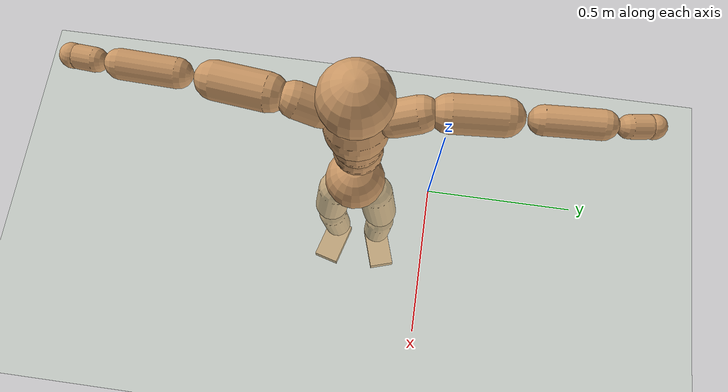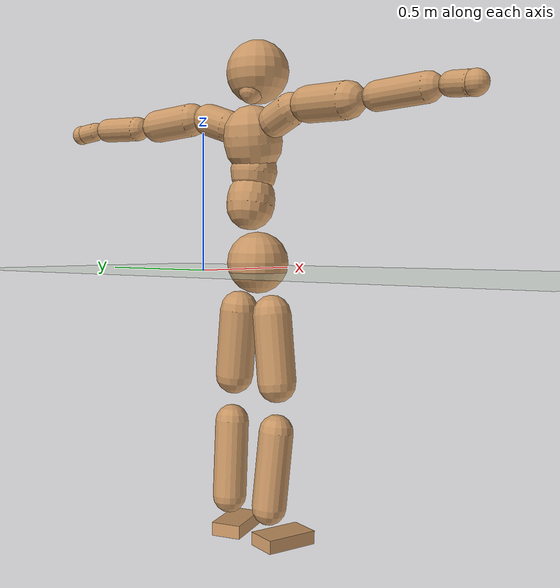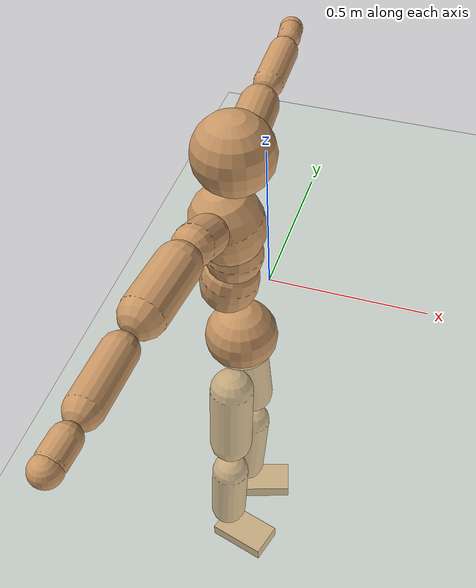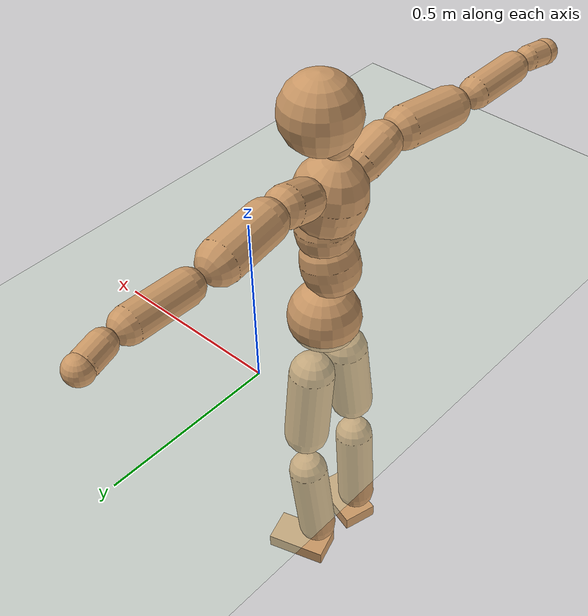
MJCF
<mujoco model="humanoid">
  <compiler coordinate="local"/>
  <default>
    <joint damping="0.0" armature="0.01" stiffness="0.0" limited="true"/>
    <geom conaffinity="1" condim="3" contype="7" margin="0.001" rgba="0.8 0.6 .4 1"/>
  </default>
  <asset>
    <texture type="skybox" builtin="gradient" rgb1=".4 .5 .6" rgb2="0 0 0" width="100" height="100"/>
    <texture builtin="flat" height="1278" mark="cross" markrgb="1 1 1" name="texgeom" random="0.01" rgb1="0.8 0.6 0.4" rgb2="0.8 0.6 0.4" type="cube" width="127"/>
    <texture builtin="checker" height="100" name="texplane" rgb1="0 0 0" rgb2="0.8 0.8 0.8" type="2d" width="100"/>
    <material name="MatPlane" reflectance="0.5" shininess="1" specular="1" texrepeat="60 60" texture="texplane"/>
    <material name="geom" texture="texgeom" texuniform="true"/>
  </asset>
  <worldbody>
    <light cutoff="100" diffuse="1 1 1" dir="-0 0 -1.3" directional="true" exponent="1" pos="0 0 1.3" specular=".1 .1 .1"/>
    <geom conaffinity="1" condim="3" name="floor" pos="0 0 0" rgba="0.8 0.9 0.8 1" size="100 100 .2" type="plane" material="MatPlane"/>
    <body name="Pelvis" pos="-0.0012 -0.262 0.0321">
      <freejoint name="Pelvis"/>
      <geom type="sphere" contype="1" conaffinity="1" density="500" size="0.1065" pos="0.0000 0.0000 0.0000" name="Pelvis"/>
      <body name="L_Hip" pos="-0.0163 0.0644 -0.0882">
        <joint name="L_Hip_x" type="hinge" pos="0 0 0" axis="1 0 0" stiffness="800" damping="80" armature="0.02" range="-180.0000 180.0000"/>
        <joint name="L_Hip_y" type="hinge" pos="0 0 0" axis="0 1 0" stiffness="800" damping="80" armature="0.02" range="-180.0000 180.0000"/>
        <joint name="L_Hip_z" type="hinge" pos="0 0 0" axis="0 0 1" stiffness="800" damping="80" armature="0.02" range="-180.0000 180.0000"/>
        <geom type="capsule" contype="1" conaffinity="1" density="500" fromto="0.0012 0.0084 -0.0781 0.0047 0.0336 -0.3126" size="0.0666" name="L_Hip"/>
        <body name="L_Knee" pos="0.0059 0.0419 -0.3907">
          <joint name="L_Knee_x" type="hinge" pos="0 0 0" axis="1 0 0" stiffness="800" damping="80" armature="0.02" range="-180.0000 180.0000"/>
          <joint name="L_Knee_y" type="hinge" pos="0 0 0" axis="0 1 0" stiffness="800" damping="80" armature="0.02" range="-180.0000 180.0000"/>
          <joint name="L_Knee_z" type="hinge" pos="0 0 0" axis="0 0 1" stiffness="800" damping="80" armature="0.02" range="-180.0000 180.0000"/>
          <geom type="capsule" contype="1" conaffinity="1" density="500" fromto="-0.0083 -0.0033 -0.0877 -0.0332 -0.0133 -0.3509" size="0.0591" name="L_Knee"/>
          <body name="L_Ankle" pos="-0.0415 -0.0166 -0.4386">
            <joint name="L_Ankle_x" type="hinge" pos="0 0 0" axis="1 0 0" stiffness="800" damping="80" armature="0.02" range="-180.0000 180.0000"/>
            <joint name="L_Ankle_y" type="hinge" pos="0 0 0" axis="0 1 0" stiffness="800" damping="80" armature="0.02" range="-180.0000 180.0000"/>
            <joint name="L_Ankle_z" type="hinge" pos="0 0 0" axis="0 0 1" stiffness="800" damping="80" armature="0.02" range="-180.0000 180.0000"/>
            <geom type="box" contype="1" conaffinity="1" density="500" pos="0.0633 0.0198 -0.0310" size="0.0927 0.0529 0.0234" quat="0.9886 0.0000 0.0000 0.1508" name="L_Ankle"/>
            <body name="L_Toe" pos="0.1266 0.0395 -0.0621">
              <joint name="L_Toe_x" type="hinge" pos="0 0 0" axis="1 0 0" stiffness="500" damping="50" armature="0.02" range="-180.0000 180.0000"/>
              <joint name="L_Toe_y" type="hinge" pos="0 0 0" axis="0 1 0" stiffness="500" damping="50" armature="0.02" range="-180.0000 180.0000"/>
              <joint name="L_Toe_z" type="hinge" pos="0 0 0" axis="0 0 1" stiffness="500" damping="50" armature="0.02" range="-180.0000 180.0000"/>
              <geom type="box" contype="1" conaffinity="1" density="500" pos="0.0000 0.0000 0.0302" size="0.0011 0.0026 0.0011" quat="0.9878 0.0000 0.0000 0.1556" name="L_Toe"/>
            </body>
          </body>
        </body>
      </body>
      <body name="R_Hip" pos="-0.0117 -0.0663 -0.0968">
        <joint name="R_Hip_x" type="hinge" pos="0 0 0" axis="1 0 0" stiffness="800" damping="80" armature="0.02" range="-180.0000 180.0000"/>
        <joint name="R_Hip_y" type="hinge" pos="0 0 0" axis="0 1 0" stiffness="800" damping="80" armature="0.02" range="-180.0000 180.0000"/>
        <joint name="R_Hip_z" type="hinge" pos="0 0 0" axis="0 0 1" stiffness="800" damping="80" armature="0.02" range="-180.0000 180.0000"/>
        <geom type="capsule" contype="1" conaffinity="1" density="500" fromto="-0.0014 -0.0087 -0.0782 -0.0057 -0.0348 -0.3127" size="0.0662" name="R_Hip"/>
        <body name="R_Knee" pos="-0.0071 -0.0435 -0.3909">
          <joint name="R_Knee_x" type="hinge" pos="0 0 0" axis="1 0 0" stiffness="800" damping="80" armature="0.02" range="-180.0000 180.0000"/>
          <joint name="R_Knee_y" type="hinge" pos="0 0 0" axis="0 1 0" stiffness="800" damping="80" armature="0.02" range="-180.0000 180.0000"/>
          <joint name="R_Knee_z" type="hinge" pos="0 0 0" axis="0 0 1" stiffness="800" damping="80" armature="0.02" range="-180.0000 180.0000"/>
          <geom type="capsule" contype="1" conaffinity="1" density="500" fromto="-0.0077 0.0041 -0.0865 -0.0307 0.0164 -0.3460" size="0.0589" name="R_Knee"/>
          <body name="R_Ankle" pos="-0.0384 0.0205 -0.4324">
            <joint name="R_Ankle_x" type="hinge" pos="0 0 0" axis="1 0 0" stiffness="800" damping="80" armature="0.02" range="-180.0000 180.0000"/>
            <joint name="R_Ankle_y" type="hinge" pos="0 0 0" axis="0 1 0" stiffness="800" damping="80" armature="0.02" range="-180.0000 180.0000"/>
            <joint name="R_Ankle_z" type="hinge" pos="0 0 0" axis="0 0 1" stiffness="800" damping="80" armature="0.02" range="-180.0000 180.0000"/>
            <geom type="box" contype="1" conaffinity="1" density="500" pos="0.0677 -0.0190 -0.0316" size="0.0941 0.0546 0.0228" quat="0.9907 0.0000 0.0000 -0.1362" name="R_Ankle"/>
            <body name="R_Toe" pos="0.1354 -0.0379 -0.0633">
              <joint name="R_Toe_x" type="hinge" pos="0 0 0" axis="1 0 0" stiffness="500" damping="50" armature="0.02" range="-180.0000 180.0000"/>
              <joint name="R_Toe_y" type="hinge" pos="0 0 0" axis="0 1 0" stiffness="500" damping="50" armature="0.02" range="-180.0000 180.0000"/>
              <joint name="R_Toe_z" type="hinge" pos="0 0 0" axis="0 0 1" stiffness="500" damping="50" armature="0.02" range="-180.0000 180.0000"/>
              <geom type="box" contype="1" conaffinity="1" density="500" pos="0.0000 0.0000 0.0326" size="0.0011 0.0027 0.0012" quat="0.9918 0.0000 0.0000 -0.1276" name="R_Toe"/>
            </body>
          </body>
        </body>
      </body>
      <body name="Torso" pos="-0.0437 0.0046 0.1352">
        <joint name="Torso_x" type="hinge" pos="0 0 0" axis="1 0 0" stiffness="1000" damping="100" armature="0.02" range="-180.0000 180.0000"/>
        <joint name="Torso_y" type="hinge" pos="0 0 0" axis="0 1 0" stiffness="1000" damping="100" armature="0.02" range="-180.0000 180.0000"/>
        <joint name="Torso_z" type="hinge" pos="0 0 0" axis="0 0 1" stiffness="1000" damping="100" armature="0.02" range="-180.0000 180.0000"/>
        <geom type="capsule" contype="1" conaffinity="1" density="500" fromto="0.0180 0.0030 0.0894 0.0120 0.0020 0.0596" size="0.082491" name="Torso"/>
        <body name="Spine" pos="0.0299 0.005 0.149">
          <joint name="Spine_x" type="hinge" pos="0 0 0" axis="1 0 0" stiffness="1000" damping="100" armature="0.02" range="-180.0000 180.0000"/>
          <joint name="Spine_y" type="hinge" pos="0 0 0" axis="0 1 0" stiffness="1000" damping="100" armature="0.02" range="-180.0000 180.0000"/>
          <joint name="Spine_z" type="hinge" pos="0 0 0" axis="0 0 1" stiffness="1000" damping="100" armature="0.02" range="-180.0000 180.0000"/>
          <geom type="capsule" contype="1" conaffinity="1" density="500" fromto="0.0030 -0.0018 0.0363 0.0020 -0.0012 0.0242" size="0.080445" name="Spine"/>
          <body name="Chest" pos="0.005 -0.003 0.0605">
            <joint name="Chest_x" type="hinge" pos="0 0 0" axis="1 0 0" stiffness="1000" damping="100" armature="0.02" range="-180.0000 180.0000"/>
            <joint name="Chest_y" type="hinge" pos="0 0 0" axis="0 1 0" stiffness="1000" damping="100" armature="0.02" range="-180.0000 180.0000"/>
            <joint name="Chest_z" type="hinge" pos="0 0 0" axis="0 0 1" stiffness="1000" damping="100" armature="0.02" range="-180.0000 180.0000"/>
            <geom type="capsule" contype="1" conaffinity="1" density="500" fromto="-0.0169 -0.0047 0.0919 -0.0113 -0.0031 0.0613" size="0.100998" name="Chest"/>
            <body name="Neck" pos="-0.0393 -0.0124 0.2211">
              <joint name="Neck_x" type="hinge" pos="0 0 0" axis="1 0 0" stiffness="500" damping="50" armature="0.02" range="-180.0000 180.0000"/>
              <joint name="Neck_y" type="hinge" pos="0 0 0" axis="0 1 0" stiffness="500" damping="50" armature="0.02" range="-180.0000 180.0000"/>
              <joint name="Neck_z" type="hinge" pos="0 0 0" axis="0 0 1" stiffness="500" damping="50" armature="0.02" range="-180.0000 180.0000"/>
              <geom type="capsule" contype="1" conaffinity="1" density="500" fromto="0.0104 0.0020 0.0174 0.0417 0.0082 0.0695" size="0.043896" name="Neck"/>
              <body name="Head" pos="0.0521 0.0102 0.0869">
                <joint name="Head_x" type="hinge" pos="0 0 0" axis="1 0 0" stiffness="500" damping="50" armature="0.02" range="-180.0000 180.0000"/>
                <joint name="Head_y" type="hinge" pos="0 0 0" axis="0 1 0" stiffness="500" damping="50" armature="0.02" range="-180.0000 180.0000"/>
                <joint name="Head_z" type="hinge" pos="0 0 0" axis="0 0 1" stiffness="500" damping="50" armature="0.02" range="-180.0000 180.0000"/>
                <geom type="sphere" contype="1" conaffinity="1" density="500" size="0.1080" pos="0.0000 0.0000 0.0000" name="Head"/>
              </body>
            </body>
            <body name="L_Thorax" pos="-0.0203 0.0763 0.1203">
              <joint name="L_Thorax_x" type="hinge" pos="0 0 0" axis="1 0 0" stiffness="500" damping="50" armature="0.02" range="-180.0000 180.0000"/>
              <joint name="L_Thorax_y" type="hinge" pos="0 0 0" axis="0 1 0" stiffness="500" damping="50" armature="0.02" range="-180.0000 180.0000"/>
              <joint name="L_Thorax_z" type="hinge" pos="0 0 0" axis="0 0 1" stiffness="500" damping="50" armature="0.02" range="-180.0000 180.0000"/>
              <geom type="capsule" contype="1" conaffinity="1" density="500" fromto="-0.0043 0.0255 0.0095 -0.0173 0.1021 0.0378" size="0.0559" name="L_Thorax"/>
              <body name="L_Shoulder" pos="-0.0216 0.1276 0.0473">
                <joint name="L_Shoulder_x" type="hinge" pos="0 0 0" axis="1 0 0" stiffness="500" damping="50" armature="0.02" range="-720.0000 720.0000"/>
                <joint name="L_Shoulder_y" type="hinge" pos="0 0 0" axis="0 1 0" stiffness="500" damping="50" armature="0.02" range="-720.0000 720.0000"/>
                <joint name="L_Shoulder_z" type="hinge" pos="0 0 0" axis="0 0 1" stiffness="500" damping="50" armature="0.02" range="-720.0000 720.0000"/>
                <geom type="capsule" contype="1" conaffinity="1" density="500" fromto="-0.0050 0.0529 -0.0032 -0.0199 0.2115 -0.0130" size="0.0586" name="L_Shoulder"/>
                <body name="L_Elbow" pos="-0.0248 0.2643 -0.0162">
                  <joint name="L_Elbow_x" type="hinge" pos="0 0 0" axis="1 0 0" stiffness="500" damping="50" armature="0.02" range="-720.0000 720.0000"/>
                  <joint name="L_Elbow_y" type="hinge" pos="0 0 0" axis="0 1 0" stiffness="500" damping="50" armature="0.02" range="-720.0000 720.0000"/>
                  <joint name="L_Elbow_z" type="hinge" pos="0 0 0" axis="0 0 1" stiffness="500" damping="50" armature="0.02" range="-720.0000 720.0000"/>
                  <geom type="capsule" contype="1" conaffinity="1" density="500" fromto="-0.0014 0.0551 0.0029 -0.0056 0.2203 0.0114" size="0.0448" name="L_Elbow"/>
                  <body name="L_Wrist" pos="-0.007 0.2753 0.0143">
                    <joint name="L_Wrist_x" type="hinge" pos="0 0 0" axis="1 0 0" stiffness="300" damping="30" armature="0.02" range="-180.0000 180.0000"/>
                    <joint name="L_Wrist_y" type="hinge" pos="0 0 0" axis="0 1 0" stiffness="300" damping="30" armature="0.02" range="-180.0000 180.0000"/>
                    <joint name="L_Wrist_z" type="hinge" pos="0 0 0" axis="0 0 1" stiffness="300" damping="30" armature="0.02" range="-180.0000 180.0000"/>
                    <geom type="capsule" contype="1" conaffinity="1" density="500" fromto="-0.0032 0.0179 -0.0022 -0.0129 0.0715 -0.0088" size="0.0355" name="L_Wrist"/>
                    <body name="L_Hand" pos="-0.0161 0.0894 -0.011">
                      <joint name="L_Hand_x" type="hinge" pos="0 0 0" axis="1 0 0" stiffness="300" damping="30" armature="0.02" range="-180.0000 180.0000"/>
                      <joint name="L_Hand_y" type="hinge" pos="0 0 0" axis="0 1 0" stiffness="300" damping="30" armature="0.02" range="-180.0000 180.0000"/>
                      <joint name="L_Hand_z" type="hinge" pos="0 0 0" axis="0 0 1" stiffness="300" damping="30" armature="0.02" range="-180.0000 180.0000"/>
                      <geom type="sphere" contype="1" conaffinity="1" density="500" size="0.0368" pos="0.0000 0.0000 0.0000" name="L_Hand"/>
                    </body>
                  </body>
                </body>
              </body>
            </body>
            <body name="R_Thorax" pos="-0.0251 -0.0873 0.1182">
              <joint name="R_Thorax_x" type="hinge" pos="0 0 0" axis="1 0 0" stiffness="500" damping="50" armature="0.02" range="-180.0000 180.0000"/>
              <joint name="R_Thorax_y" type="hinge" pos="0 0 0" axis="0 1 0" stiffness="500" damping="50" armature="0.02" range="-180.0000 180.0000"/>
              <joint name="R_Thorax_z" type="hinge" pos="0 0 0" axis="0 0 1" stiffness="500" damping="50" armature="0.02" range="-180.0000 180.0000"/>
              <geom type="capsule" contype="1" conaffinity="1" density="500" fromto="-0.0020 -0.0238 0.0098 -0.0080 -0.0952 0.0391" size="0.0559" name="R_Thorax"/>
              <body name="R_Shoulder" pos="-0.01 -0.119 0.0489">
                <joint name="R_Shoulder_x" type="hinge" pos="0 0 0" axis="1 0 0" stiffness="500" damping="50" armature="0.02" range="-720.0000 720.0000"/>
                <joint name="R_Shoulder_y" type="hinge" pos="0 0 0" axis="0 1 0" stiffness="500" damping="50" armature="0.02" range="-720.0000 720.0000"/>
                <joint name="R_Shoulder_z" type="hinge" pos="0 0 0" axis="0 0 1" stiffness="500" damping="50" armature="0.02" range="-720.0000 720.0000"/>
                <geom type="capsule" contype="1" conaffinity="1" density="500" fromto="-0.0069 -0.0543 -0.0028 -0.0276 -0.2171 -0.0112" size="0.0594" name="R_Shoulder"/>
                <body name="R_Elbow" pos="-0.0345 -0.2714 -0.014">
                  <joint name="R_Elbow_x" type="hinge" pos="0 0 0" axis="1 0 0" stiffness="500" damping="50" armature="0.02" range="-720.0000 720.0000"/>
                  <joint name="R_Elbow_y" type="hinge" pos="0 0 0" axis="0 1 0" stiffness="500" damping="50" armature="0.02" range="-720.0000 720.0000"/>
                  <joint name="R_Elbow_z" type="hinge" pos="0 0 0" axis="0 0 1" stiffness="500" damping="50" armature="0.02" range="-720.0000 720.0000"/>
                  <geom type="capsule" contype="1" conaffinity="1" density="500" fromto="-0.0014 -0.0559 0.0015 -0.0054 -0.2236 0.0059" size="0.0457" name="R_Elbow"/>
                  <body name="R_Wrist" pos="-0.0068 -0.2795 0.0074">
                    <joint name="R_Wrist_x" type="hinge" pos="0 0 0" axis="1 0 0" stiffness="300" damping="30" armature="0.02" range="-180.0000 180.0000"/>
                    <joint name="R_Wrist_y" type="hinge" pos="0 0 0" axis="0 1 0" stiffness="300" damping="30" armature="0.02" range="-180.0000 180.0000"/>
                    <joint name="R_Wrist_z" type="hinge" pos="0 0 0" axis="0 0 1" stiffness="300" damping="30" armature="0.02" range="-180.0000 180.0000"/>
                    <geom type="capsule" contype="1" conaffinity="1" density="500" fromto="-0.0021 -0.0185 -0.0018 -0.0083 -0.0741 -0.0073" size="0.0365" name="R_Wrist"/>
                    <body name="R_Hand" pos="-0.0104 -0.0926 -0.0091">
                      <joint name="R_Hand_x" type="hinge" pos="0 0 0" axis="1 0 0" stiffness="300" damping="30" armature="0.02" range="-180.0000 180.0000"/>
                      <joint name="R_Hand_y" type="hinge" pos="0 0 0" axis="0 1 0" stiffness="300" damping="30" armature="0.02" range="-180.0000 180.0000"/>
                      <joint name="R_Hand_z" type="hinge" pos="0 0 0" axis="0 0 1" stiffness="300" damping="30" armature="0.02" range="-180.0000 180.0000"/>
                      <geom type="sphere" contype="1" conaffinity="1" density="500" size="0.0377" pos="0.0000 0.0000 0.0000" name="R_Hand"/>
                    </body>
                  </body>
                </body>
              </body>
            </body>
          </body>
        </body>
      </body>
    </body>
  </worldbody>
  <actuator>
    <motor name="L_Hip_x" joint="L_Hip_x" gear="500"/>
    <motor name="L_Hip_y" joint="L_Hip_y" gear="500"/>
    <motor name="L_Hip_z" joint="L_Hip_z" gear="500"/>
    <motor name="L_Knee_x" joint="L_Knee_x" gear="500"/>
    <motor name="L_Knee_y" joint="L_Knee_y" gear="500"/>
    <motor name="L_Knee_z" joint="L_Knee_z" gear="500"/>
    <motor name="L_Ankle_x" joint="L_Ankle_x" gear="500"/>
    <motor name="L_Ankle_y" joint="L_Ankle_y" gear="500"/>
    <motor name="L_Ankle_z" joint="L_Ankle_z" gear="500"/>
    <motor name="L_Toe_x" joint="L_Toe_x" gear="500"/>
    <motor name="L_Toe_y" joint="L_Toe_y" gear="500"/>
    <motor name="L_Toe_z" joint="L_Toe_z" gear="500"/>
    <motor name="R_Hip_x" joint="R_Hip_x" gear="500"/>
    <motor name="R_Hip_y" joint="R_Hip_y" gear="500"/>
    <motor name="R_Hip_z" joint="R_Hip_z" gear="500"/>
    <motor name="R_Knee_x" joint="R_Knee_x" gear="500"/>
    <motor name="R_Knee_y" joint="R_Knee_y" gear="500"/>
    <motor name="R_Knee_z" joint="R_Knee_z" gear="500"/>
    <motor name="R_Ankle_x" joint="R_Ankle_x" gear="500"/>
    <motor name="R_Ankle_y" joint="R_Ankle_y" gear="500"/>
    <motor name="R_Ankle_z" joint="R_Ankle_z" gear="500"/>
    <motor name="R_Toe_x" joint="R_Toe_x" gear="500"/>
    <motor name="R_Toe_y" joint="R_Toe_y" gear="500"/>
    <motor name="R_Toe_z" joint="R_Toe_z" gear="500"/>
    <motor name="Torso_x" joint="Torso_x" gear="500"/>
    <motor name="Torso_y" joint="Torso_y" gear="500"/>
    <motor name="Torso_z" joint="Torso_z" gear="500"/>
    <motor name="Spine_x" joint="Spine_x" gear="500"/>
    <motor name="Spine_y" joint="Spine_y" gear="500"/>
    <motor name="Spine_z" joint="Spine_z" gear="500"/>
    <motor name="Chest_x" joint="Chest_x" gear="500"/>
    <motor name="Chest_y" joint="Chest_y" gear="500"/>
    <motor name="Chest_z" joint="Chest_z" gear="500"/>
    <motor name="Neck_x" joint="Neck_x" gear="500"/>
    <motor name="Neck_y" joint="Neck_y" gear="500"/>
    <motor name="Neck_z" joint="Neck_z" gear="500"/>
    <motor name="Head_x" joint="Head_x" gear="500"/>
    <motor name="Head_y" joint="Head_y" gear="500"/>
    <motor name="Head_z" joint="Head_z" gear="500"/>
    <motor name="L_Thorax_x" joint="L_Thorax_x" gear="500"/>
    <motor name="L_Thorax_y" joint="L_Thorax_y" gear="500"/>
    <motor name="L_Thorax_z" joint="L_Thorax_z" gear="500"/>
    <motor name="L_Shoulder_x" joint="L_Shoulder_x" gear="500"/>
    <motor name="L_Shoulder_y" joint="L_Shoulder_y" gear="500"/>
    <motor name="L_Shoulder_z" joint="L_Shoulder_z" gear="500"/>
    <motor name="L_Elbow_x" joint="L_Elbow_x" gear="500"/>
    <motor name="L_Elbow_y" joint="L_Elbow_y" gear="500"/>
    <motor name="L_Elbow_z" joint="L_Elbow_z" gear="500"/>
    <motor name="L_Wrist_x" joint="L_Wrist_x" gear="500"/>
    <motor name="L_Wrist_y" joint="L_Wrist_y" gear="500"/>
    <motor name="L_Wrist_z" joint="L_Wrist_z" gear="500"/>
    <motor name="L_Hand_x" joint="L_Hand_x" gear="500"/>
    <motor name="L_Hand_y" joint="L_Hand_y" gear="500"/>
    <motor name="L_Hand_z" joint="L_Hand_z" gear="500"/>
    <motor name="R_Thorax_x" joint="R_Thorax_x" gear="500"/>
    <motor name="R_Thorax_y" joint="R_Thorax_y" gear="500"/>
    <motor name="R_Thorax_z" joint="R_Thorax_z" gear="500"/>
    <motor name="R_Shoulder_x" joint="R_Shoulder_x" gear="500"/>
    <motor name="R_Shoulder_y" joint="R_Shoulder_y" gear="500"/>
    <motor name="R_Shoulder_z" joint="R_Shoulder_z" gear="500"/>
    <motor name="R_Elbow_x" joint="R_Elbow_x" gear="500"/>
    <motor name="R_Elbow_y" joint="R_Elbow_y" gear="500"/>
    <motor name="R_Elbow_z" joint="R_Elbow_z" gear="500"/>
    <motor name="R_Wrist_x" joint="R_Wrist_x" gear="500"/>
    <motor name="R_Wrist_y" joint="R_Wrist_y" gear="500"/>
    <motor name="R_Wrist_z" joint="R_Wrist_z" gear="500"/>
    <motor name="R_Hand_x" joint="R_Hand_x" gear="500"/>
    <motor name="R_Hand_y" joint="R_Hand_y" gear="500"/>
    <motor name="R_Hand_z" joint="R_Hand_z" gear="500"/>
  </actuator>
  <contact>
    <exclude body1="Torso" body2="Chest"/>
    <exclude body1="Head" body2="Chest"/>
    <exclude body1="R_Knee" body2="R_Toe"/>
    <exclude body1="R_Knee" body2="L_Ankle"/>
    <exclude body1="R_Knee" body2="L_Toe"/>
    <exclude body1="L_Knee" body2="L_Toe"/>
    <exclude body1="L_Knee" body2="R_Ankle"/>
    <exclude body1="L_Knee" body2="R_Toe"/>
    <exclude body1="L_Shoulder" body2="Chest"/>
    <exclude body1="R_Shoulder" body2="Chest"/>
  </contact>
  <sensor/>
  <size njmax="700" nconmax="700"/>
</mujoco>
